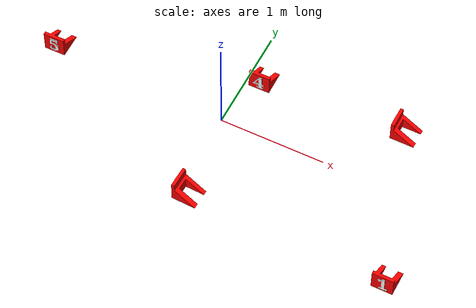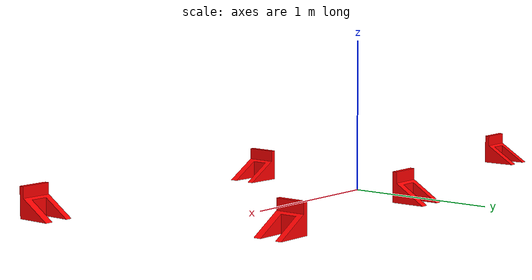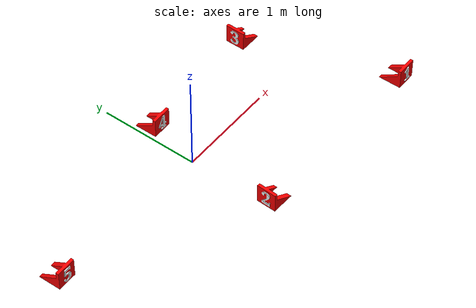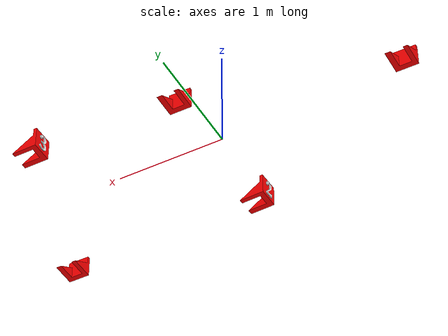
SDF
<?xml version='1.0'?>
<sdf version='1.6'>
  <model name='all_the_tables_numbers'>
    <model name='building_curve'>
      <static>1</static>
      <link name='curve1'>
        <visual name='visual'>
          <geometry>
            <mesh>
              <uri>model://cookobot_gazebo/models/table_number_five/five/five.dae</uri>
            </mesh>
          </geometry>
        </visual>
        <collision name='collision'>
          <geometry>
            <mesh>
              <uri>model://cookobot_gazebo/models/table_number_five/five/five.dae</uri>
            </mesh>
          </geometry>
          <max_contacts>10</max_contacts>
          <surface>
            <contact>
              <ode/>
            </contact>
            <bounce/>
            <friction>
              <torsional>
                <ode/>
              </torsional>
              <ode/>
            </friction>
          </surface>
        </collision>
        <self_collide>0</self_collide>
        <enable_wind>0</enable_wind>
        <kinematic>0</kinematic>
      </link>
      <pose frame=''>-1.60519 -0.018672 0 0 0 -1.5609</pose>
    </model>
    <model name='building_curve_0'>
      <static>1</static>
      <link name='curve1'>
        <visual name='visual'>
          <geometry>
            <mesh>
              <uri>model://cookobot_gazebo/models/table_number_four/four/four.dae</uri>
            </mesh>
          </geometry>
        </visual>
        <collision name='collision'>
          <geometry>
            <mesh>
              <uri>model://cookobot_gazebo/models/table_number_four/four/four.dae</uri>
            </mesh>
          </geometry>
          <max_contacts>10</max_contacts>
          <surface>
            <contact>
              <ode/>
            </contact>
            <bounce/>
            <friction>
              <torsional>
                <ode/>
              </torsional>
              <ode/>
            </friction>
          </surface>
        </collision>
        <self_collide>0</self_collide>
        <enable_wind>0</enable_wind>
        <kinematic>0</kinematic>
      </link>
      <pose frame=''>0.242471 0.440375 0 0 0 -1.56295</pose>
    </model>
    <model name='building_curve_1'>
      <static>1</static>
      <link name='curve1'>
        <visual name='visual'>
          <geometry>
            <mesh>
              <uri>model://cookobot_gazebo/models/table_number_three/three/three.dae</uri>
            </mesh>
          </geometry>
        </visual>
        <collision name='collision'>
          <geometry>
            <mesh>
              <uri>model://cookobot_gazebo/models/table_number_three/three/three.dae</uri>
            </mesh>
          </geometry>
          <max_contacts>10</max_contacts>
          <surface>
            <contact>
              <ode/>
            </contact>
            <bounce/>
            <friction>
              <torsional>
                <ode/>
              </torsional>
              <ode/>
            </friction>
          </surface>
        </collision>
        <self_collide>0</self_collide>
        <enable_wind>0</enable_wind>
        <kinematic>0</kinematic>
      </link>
      <pose frame=''>1.39415 0.504257 0 0 -0 3.13723</pose>
    </model>
    <model name='building_curve_2'>
      <static>1</static>
      <link name='curve1'>
        <visual name='visual'>
          <geometry>
            <mesh>
              <uri>model://cookobot_gazebo/models/table_number_two/two/two.dae</uri>
            </mesh>
          </geometry>
        </visual>
        <collision name='collision'>
          <geometry>
            <mesh>
              <uri>model://cookobot_gazebo/models/table_number_two/two/two.dae</uri>
            </mesh>
          </geometry>
          <max_contacts>10</max_contacts>
          <surface>
            <contact>
              <ode/>
            </contact>
            <bounce/>
            <friction>
              <torsional>
                <ode/>
              </torsional>
              <ode/>
            </friction>
          </surface>
        </collision>
        <self_collide>0</self_collide>
        <enable_wind>0</enable_wind>
        <kinematic>0</kinematic>
      </link>
      <pose frame=''>-0.031447 -0.925975 0 0 -0 3.102</pose>
    </model>
    <model name='building_curve_3'>
      <static>1</static>
      <link name='curve1'>
        <visual name='visual'>
          <geometry>
            <mesh>
              <uri>model://table_number_one/one/one.dae</uri>
            </mesh>
          </geometry>
        </visual>
        <collision name='collision'>
          <geometry>
            <mesh>
              <uri>model://table_number_one/one/one.dae</uri>
            </mesh>
          </geometry>
        </collision>
      </link>
      <pose frame=''>2.09834 -0.971505 0 0 0 -1.57318</pose>
    </model>
    <static>0</static>
    <allow_auto_disable>1</allow_auto_disable>
  </model>
</sdf>
